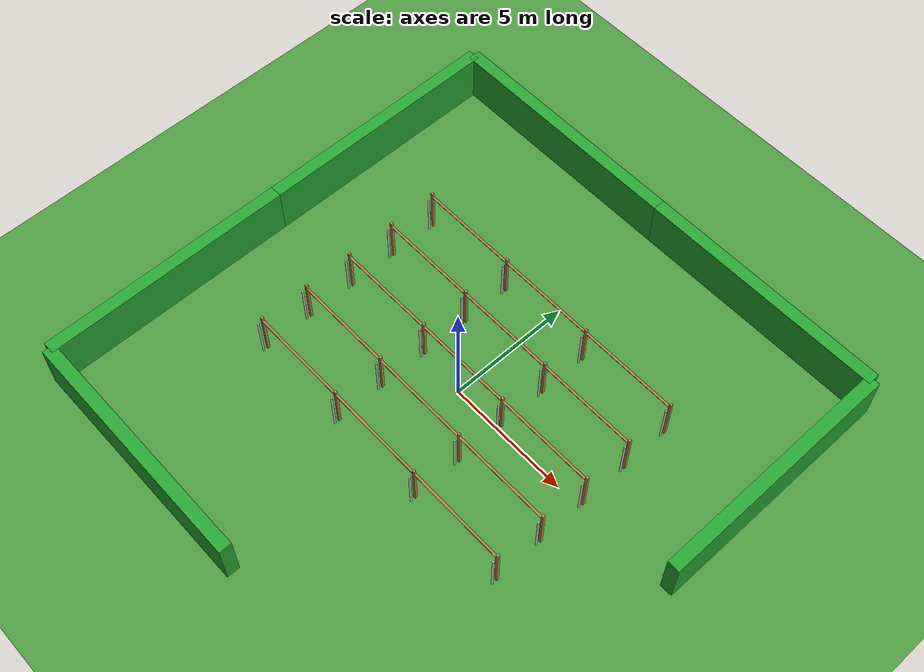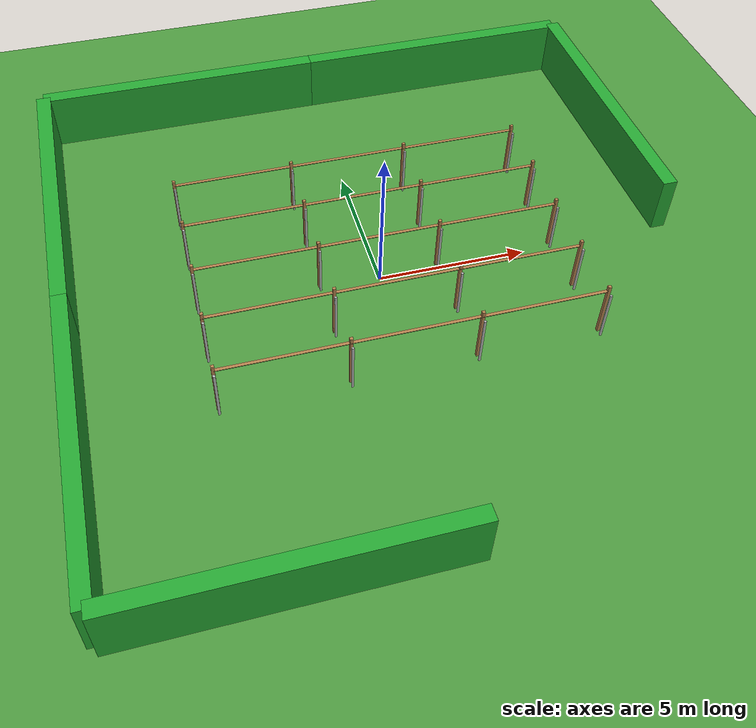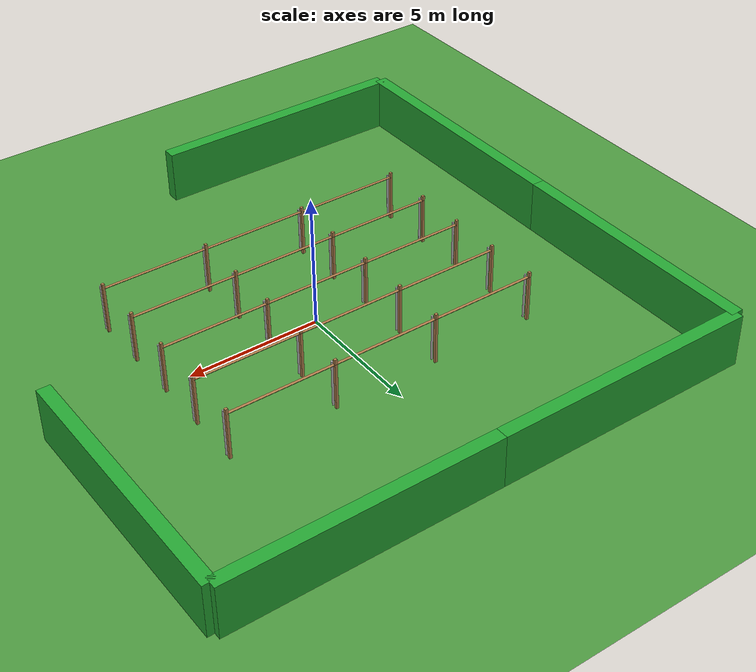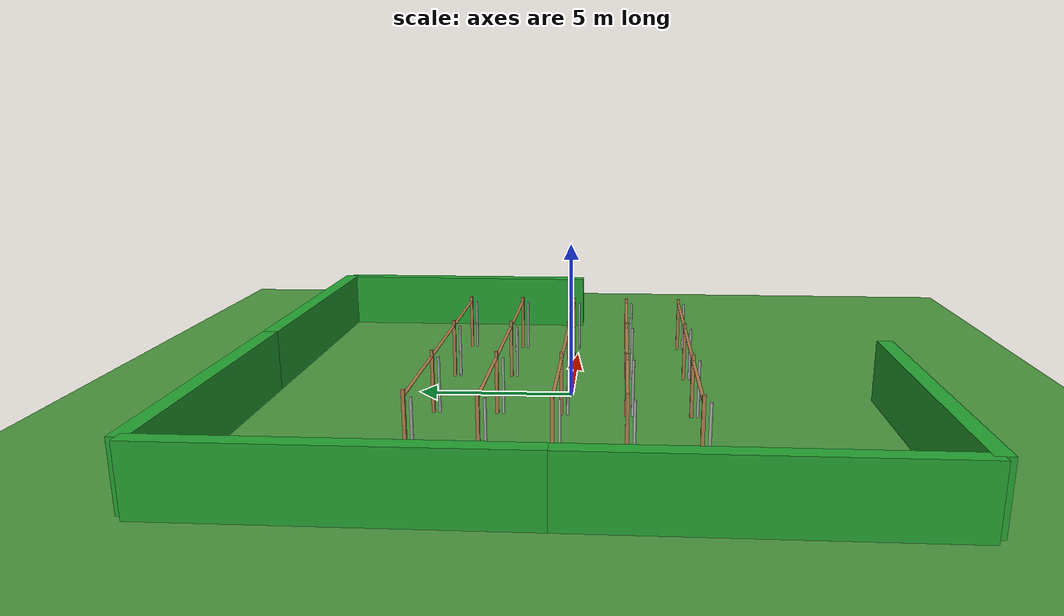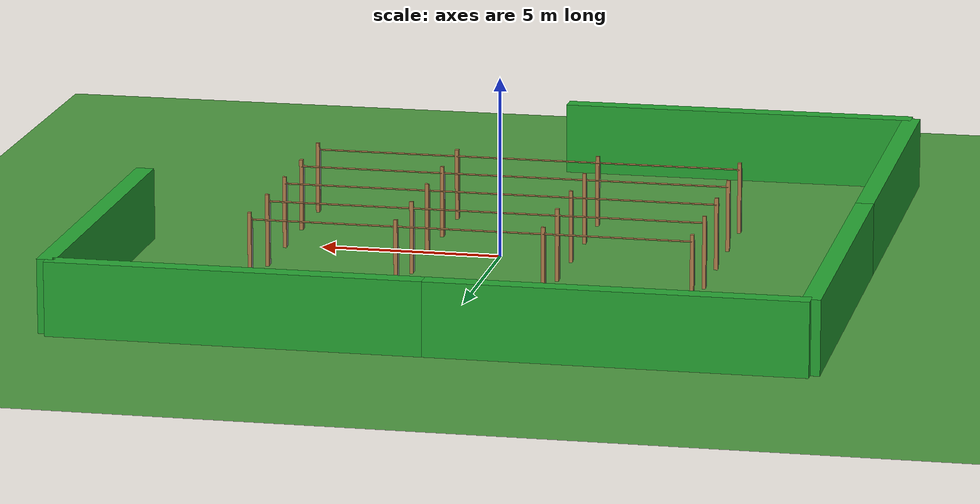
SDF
<!-- This file contains the custom world that was used for testing and includes a hedge surrounding the pergola model. -->

<?xml version="1.0"?>
<sdf version="1.4">

<world name="world">
	<include>
		<uri>model://sun</uri>
		<pose>0 50 10 0 0 0</pose>
	</include>

	<include>
		<uri>model://orchard_ground_plane</uri>
	</include>

	<!-- Tree population -->
	<include>
		<name>tree01</name>
		<uri>model://tree_trunk</uri>
		<pose>-2 -4 0 0 0 0</pose>
	</include>

	<include>
		<name>tree02</name>
		<uri>model://tree_trunk</uri>
		<pose>2 -4 0 0 0 0</pose>
	</include>

	<include>
		<name>tree03</name>
		<uri>model://tree_trunk</uri>
		<pose>-6 -4 0 0 0 0</pose>
	</include>

	<include>
		<name>tree04</name>
		<uri>model://tree_trunk</uri>
		<pose>6 -4 0 0 0 0</pose>
	</include>

	<include>
		<name>tree11</name>
		<uri>model://tree_trunk</uri>
		<pose>-2 -2 0 0 0 0</pose>
	</include>

	<include>
		<name>tree12</name>
		<uri>model://tree_trunk</uri>
		<pose>2 -2 0 0 0 0</pose>
	</include>

	<include>
		<name>tree13</name>
		<uri>model://tree_trunk</uri>
		<pose>-6 -2 0 0 0 0</pose>
	</include>

	<include>
		<name>tree14</name>
		<uri>model://tree_trunk</uri>
		<pose>6 -2 0 0 0 0</pose>
	</include>

	<include>
		<name>tree21</name>
		<uri>model://tree_trunk</uri>
		<pose>-2 0 0 0 0 0</pose>
	</include>

	<include>
		<name>tree22</name>
		<uri>model://tree_trunk</uri>
		<pose>2 0 0 0 0 0</pose>
	</include>

	<include>
		<name>tree23</name>
		<uri>model://tree_trunk</uri>
		<pose>-6 0 0 0 0 0</pose>
	</include>

	<include>
		<name>tree24</name>
		<uri>model://tree_trunk</uri>
		<pose>6 0 0 0 0 0</pose>
	</include>

	<include>
		<name>tree31</name>
		<uri>model://tree_trunk</uri>
		<pose>-2 2 0 0 0 0</pose>
	</include>

	<include>
		<name>tree32</name>
		<uri>model://tree_trunk</uri>
		<pose>2 2 0 0 0 0</pose>
	</include>

	<include>
		<name>tree33</name>
		<uri>model://tree_trunk</uri>
		<pose>-6 2 0 0 0 0</pose>
	</include>

	<include>
		<name>tree34</name>
		<uri>model://tree_trunk</uri>
		<pose>6 2 0 0 0 0</pose>
	</include>

	<include>
		<name>tree41</name>
		<uri>model://tree_trunk</uri>
		<pose>-2 4 0 0 0 0</pose>
	</include>

	<include>
		<name>tree42</name>
		<uri>model://tree_trunk</uri>
		<pose>2 4 0 0 0 0</pose>
	</include>

	<include>
		<name>tree43</name>
		<uri>model://tree_trunk</uri>
		<pose>-6 4 0 0 0 0</pose>
	</include>

	<include>
		<name>tree44</name>
		<uri>model://tree_trunk</uri>
		<pose>6 4 0 0 0 0</pose>
	</include>

	<!-- Pergola post population -->
	<include>
		<name>post01</name>
		<uri>model://post</uri>
		<pose>-2 -3.8 0 0 0 0</pose>
	</include>

	<include>
		<name>post02</name>
		<uri>model://post</uri>
		<pose>2 -3.8 0 0 0 0</pose>
	</include>

	<include>
		<name>post03</name>
		<uri>model://post</uri>
		<pose>-6 -3.8 0 0 0 0</pose>
	</include>

	<include>
		<name>post04</name>
		<uri>model://post</uri>
		<pose>6 -3.8 0 0 0 0</pose>
	</include>

	<include>
		<name>post11</name>
		<uri>model://post</uri>
		<pose>-2 -1.8 0 0 0 0</pose>
	</include>

	<include>
		<name>post12</name>
		<uri>model://post</uri>
		<pose>2 -1.8 0 0 0 0</pose>
	</include>

	<include>
		<name>post13</name>
		<uri>model://post</uri>
		<pose>-6 -1.8 0 0 0 0</pose>
	</include>

	<include>
		<name>post14</name>
		<uri>model://post</uri>
		<pose>6 -1.8 0 0 0 0</pose>
	</include>

	<include>
		<name>post21</name>
		<uri>model://post</uri>
		<pose>-2 .2 0 0 0 0</pose>
	</include>

	<include>
		<name>post22</name>
		<uri>model://post</uri>
		<pose>2 .2 0 0 0 0</pose>
	</include>

	<include>
		<name>post23</name>
		<uri>model://post</uri>
		<pose>-6 .2 0 0 0 0</pose>
	</include>

	<include>
		<name>post24</name>
		<uri>model://post</uri>
		<pose>6 .2 0 0 0 0</pose>
	</include>

	<include>
		<name>post31</name>
		<uri>model://post</uri>
		<pose>-2 2.2 0 0 0 0</pose>
	</include>

	<include>
		<name>post32</name>
		<uri>model://post</uri>
		<pose>2 2.2 0 0 0 0</pose>
	</include>

	<include>
		<name>post33</name>
		<uri>model://post</uri>
		<pose>-6 2.2 0 0 0 0</pose>
	</include>

	<include>
		<name>post34</name>
		<uri>model://post</uri>
		<pose>6 2.2 0 0 0 0</pose>
	</include>

	<include>
		<name>post41</name>
		<uri>model://post</uri>
		<pose>-2 4.2 0 0 0 0</pose>
	</include>

	<include>
		<name>post42</name>
		<uri>model://post</uri>
		<pose>2 4.2 0 0 0 0</pose>
	</include>

	<include>
		<name>post43</name>
		<uri>model://post</uri>
		<pose>-6 4.2 0 0 0 0</pose>
	</include>

	<include>
		<name>post344</name>
		<uri>model://post</uri>
		<pose>6 4.2 0 0 0 0</pose>
	</include>

	<include>
		<name>cross01</name>
		<uri>model://crossbeam</uri>
		<pose>0 -3.8 1.8 0 0 0</pose>
	</include>

	<include>
		<name>cross02</name>
		<uri>model://crossbeam</uri>
		<pose>-4 -3.8 1.8 0 0 0</pose>
	</include>

	<include>
		<name>cross03</name>
		<uri>model://crossbeam</uri>
		<pose>4 -3.8 1.8 0 0 0</pose>
	</include>

	<include>
		<name>cross11</name>
		<uri>model://crossbeam</uri>
		<pose>0 -1.8 1.8 0 0 0</pose>
	</include>

	<include>
		<name>cross12</name>
		<uri>model://crossbeam</uri>
		<pose>-4 -1.8 1.8 0 0 0</pose>
	</include>

	<include>
		<name>cross13</name>
		<uri>model://crossbeam</uri>
		<pose>4 -1.8 1.8 0 0 0</pose>
	</include>

	<include>
		<name>cross21</name>
		<uri>model://crossbeam</uri>
		<pose>0 .2 1.8 0 0 0</pose>
	</include>

	<include>
		<name>cross22</name>
		<uri>model://crossbeam</uri>
		<pose>-4 .2 1.8 0 0 0</pose>
	</include>

	<include>
		<name>cross23</name>
		<uri>model://crossbeam</uri>
		<pose>4 .2 1.8 0 0 0</pose>
	</include>

	<include>
		<name>cross31</name>
		<uri>model://crossbeam</uri>
		<pose>0 2.2 1.8 0 0 0</pose>
	</include>

	<include>
		<name>cross32</name>
		<uri>model://crossbeam</uri>
		<pose>-4 2.2 1.8 0 0 0</pose>
	</include>

	<include>
		<name>cross33</name>
		<uri>model://crossbeam</uri>
		<pose>4 2.2 1.8 0 0 0</pose>
	</include>

	<include>
		<name>cross41</name>
		<uri>model://crossbeam</uri>
		<pose>0 4.2 1.8 0 0 0</pose>
	</include>

	<include>
		<name>cross42</name>
		<uri>model://crossbeam</uri>
		<pose>-4 4.2 1.8 0 0 0</pose>
	</include>

	<include>
		<name>cross43</name>
		<uri>model://crossbeam</uri>
		<pose>4 4.2 1.8 0 0 0</pose>
	</include>

	<!-- Sheltering hedge -->
	<include>
		<name>hedge1a</name>
		<uri>model://hedge</uri>
		<pose>-10 5 0 0 0 1.570796</pose>
	</include>

	<include>
		<name>hedge1b</name>
		<uri>model://hedge</uri>
		<pose>-10 -5 0 0 0 1.570796</pose>
	</include>

	<include>
		<name>hedge2a</name>
		<uri>model://hedge</uri>
		<pose>10 5 0 0 0 1.570796</pose>
	</include>

	<include>
		<name>hedge3</name>
		<uri>model://hedge</uri>
		<pose>-5 -10 0 0 0 0</pose>
	</include>

	<include>
		<name>hedge4a</name>
		<uri>model://hedge</uri>
		<pose>-5 10 0 0 0 0</pose>
	</include>

	<include>
		<name>hedge4b</name>
		<uri>model://hedge</uri>
		<pose>5 10 0 0 0 0</pose>
	</include>

</world>

</sdf>

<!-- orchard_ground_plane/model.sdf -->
<sdf version="1.5">
  <model name="orchard_ground_plane">
    <static>true</static>
    <link name="link">
      <collision name="collision">
        <geometry>
          <plane>
            <normal>0 0 1</normal>
            <size>100 100</size>
          </plane>
        </geometry>
        <surface>
          <friction>
            <ode>
              <mu>100</mu>
              <mu2>50</mu2>
            </ode>
          </friction>
        </surface>
      </collision>
      <visual name="visual">
        <cast_shadows>false</cast_shadows>
        <geometry>
          <plane>
            <normal>0 0 1</normal>
            <size>100 100</size>
          </plane>
        </geometry>
        <material>
          <script>
            <uri>model://orchard_ground_plane/materials/scripts</uri>
            <uri>model://orchard_ground_plane/materials/textures</uri>
            <name>OrchardGround/FlatGrass</name>
          </script>
        </material>
      </visual>
    </link>
  </model>
</sdf>

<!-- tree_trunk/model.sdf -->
<sdf version='1.4'>
  <model name="tree_trunk">
  <static>true</static>
    <link name="trunk">
      <pose>0 0 0.9 0 0 0</pose>

      <collision name="collision">
        <geometry>
          <cylinder>
              <radius>.04</radius> <length>1.8</length>
          </cylinder>
        </geometry>
      </collision>

      <visual name="visual">
        <geometry>
          <cylinder>
              <radius>.04</radius> <length>1.8</length>
          </cylinder>
        </geometry>
        <material>
		<script>
			<uri>model://tree_trunk/materials/scripts</uri>
			<uri>model://tree_trunk/materials/textures</uri>
			<name>Tree/Bark</name>
		</script>
        </material>
      </visual>

    <inertial>
      <pose>0 0 0 0 0 0</pose>
      <mass>20</mass>
      <inertia>
        <ixx>0.4</ixx>
        <ixy>0.0</ixy>
        <ixz>0.0</ixz>
        <iyy>0.4</iyy>
        <iyz>0.0</iyz>
        <izz>0.2</izz>
      </inertia>
    </inertial>

    </link>

  </model>
</sdf>

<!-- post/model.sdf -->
<sdf version='1.4'>
  <model name="post">
  <static>true</static>
    <link name="post">
      <pose>0 0 1 0 0 0</pose>

      <collision name="collision">
        <geometry>
          <box>
            <size>.1 .1 2</size>
          </box>
        </geometry>
      </collision>

      <visual name="visual">
        <geometry>
          <box>
            <size>.1 .1 2</size>
          </box>
        </geometry>
        <material>
			<script>
				<name>Gazebo/Wood</name>
			</script>
        </material>
      </visual>

    <inertial>
      <pose>0 0 1 0 0 0</pose>
      <mass>1</mass>
      <inertia>
        <ixx>1.0</ixx>
        <ixy>0.0</ixy>
        <ixz>0.0</ixz>
        <iyy>1.0</iyy>
        <iyz>0.0</iyz>
        <izz>1</izz>
      </inertia>
    </inertial>

    </link>

  </model>
</sdf>

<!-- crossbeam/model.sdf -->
<sdf version='1.4'>
  <model name="crossbeam">
  <static>true</static>
    <link name="beam">
      <pose>0 0 0.01 0 0 0</pose>

      <collision name="collision">
        <geometry>
          <box>
            <size>4 .1 .02</size>
          </box>
        </geometry>
      </collision>

      <visual name="visual">
        <geometry>
          <box>
            <size>4 .1 .02</size>
          </box>
        </geometry>
        <material>
	  <script>
	    <name>Gazebo/Wood</name>
	  </script>
        </material>
      </visual>

    <inertial>
      <pose>0 0 0.01 0 0 0</pose>
      <mass>0.5</mass>
      <inertia>
        <ixx>1.0</ixx>
        <ixy>0.0</ixy>
        <ixz>0.0</ixz>
        <iyy>1.0</iyy>
        <iyz>0.0</iyz>
        <izz>1</izz>
      </inertia>
    </inertial>

    </link>

  </model>
</sdf>

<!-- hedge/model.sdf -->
<sdf version='1.4'>
  <model name="hedge">
  <static>true</static>
    <link name="box">
      <pose>0 0 1 0 0 0</pose>
      <collision name="collision">
        <geometry>
          <box>
            <size>10 .5 2</size>
          </box>
        </geometry>
      </collision>
      <visual name="visual">
        <geometry>
          <box>
            <size>10 .5 2</size>
          </box>
        </geometry>

        <material>
			<script>
				<uri>file://media/materials/scripts/gazebo.material</uri>
				<name>Gazebo/Green</name>
			</script>
        </material>
      </visual>
    </link>

  </model>
</sdf>
